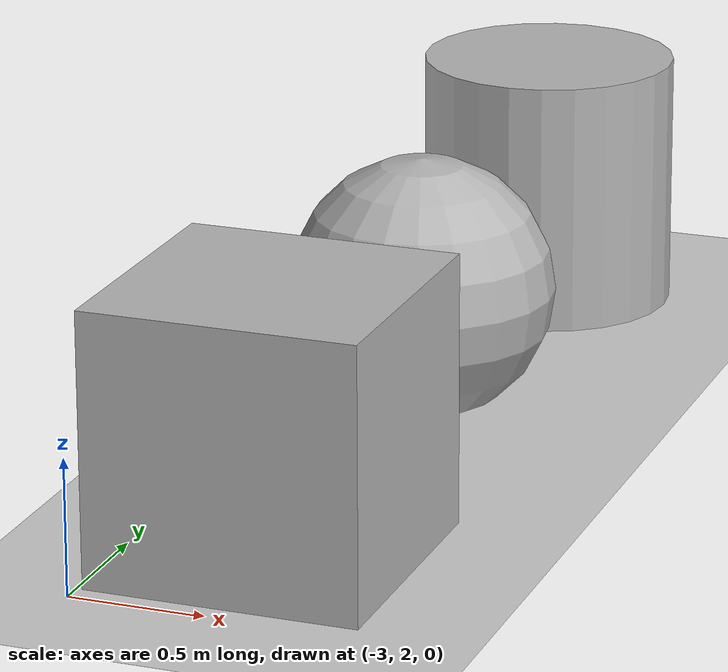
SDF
<sdf version="1.6">
 <world name="default">
  <model name="ground_plane">
   <static>1</static>
   <link name="link">
    <collision name="collision">
     <geometry><plane><normal>0 0 1</normal><size>100 100</size></plane></geometry>
     <surface>
      <contact><collide_bitmask>65535</collide_bitmask></contact>
      <friction><ode><mu>100</mu><mu2>50</mu2></ode></friction>
     </surface>
    </collision>
    <visual name="visual">
     <cast_shadows>0</cast_shadows>
     <geometry><plane><normal>0 0 1</normal><size>100 100</size></plane></geometry>
     <material>
      <script><uri>file://media/materials/scripts/gazebo.material</uri><name>Gazebo/Grey</name></script>
     </material>
    </visual>
   </link>
  </model>
  <model name="textured_shapes">
   <pose>-2.47949 4.0715 0.5 0 -0 0</pose>
   <link name="box">
    <pose>0 -1.5 0 0 -0 0</pose>
    <collision name="collision"><geometry><box><size>1 1 1</size></box></geometry></collision>
    <visual name="visual">
     <geometry><box><size>1 1 1</size></box></geometry>
     <material>
      <script>
       <uri>model://textured_shapes/materials/scripts</uri>
       <uri>model://textured_shapes/materials/textures</uri>
       <name>TexturedShape/Squares</name>
      </script>
     </material>
    </visual>
    <inertial>
     <inertia><ixx>1</ixx><ixy>0</ixy><ixz>0</ixz><iyy>1</iyy><iyz>0</iyz><izz>1</izz></inertia>
     <mass>1</mass>
    </inertial>
   </link>
   <link name="sphere">
    <collision name="collision"><geometry><sphere><radius>0.5</radius></sphere></geometry></collision>
    <visual name="visual">
     <geometry><sphere><radius>0.5</radius></sphere></geometry>
     <material>
      <script>
       <uri>model://textured_shapes/materials/scripts</uri>
       <uri>model://textured_shapes/materials/textures</uri>
       <name>TexturedShape/Squares</name>
      </script>
     </material>
    </visual>
    <inertial>
     <inertia><ixx>1</ixx><ixy>0</ixy><ixz>0</ixz><iyy>1</iyy><iyz>0</iyz><izz>1</izz></inertia>
     <mass>1</mass>
    </inertial>
   </link>
   <link name="cylinder">
    <pose>0 1.5 0 0 -0 0</pose>
    <collision name="collision">
     <geometry><cylinder><radius>0.5</radius><length>1</length></cylinder></geometry>
    </collision>
    <visual name="visual">
     <geometry><cylinder><radius>0.5</radius><length>1</length></cylinder></geometry>
     <material>
      <script>
       <uri>model://textured_shapes/materials/scripts</uri>
       <uri>model://textured_shapes/materials/textures</uri>
       <name>TexturedShape/Squares</name>
      </script>
     </material>
    </visual>
    <inertial>
     <inertia><ixx>1</ixx><ixy>0</ixy><ixz>0</ixz><iyy>1</iyy><iyz>0</iyz><izz>1</izz></inertia>
     <mass>1</mass>
    </inertial>
   </link>
  </model>
 </world>
</sdf>
